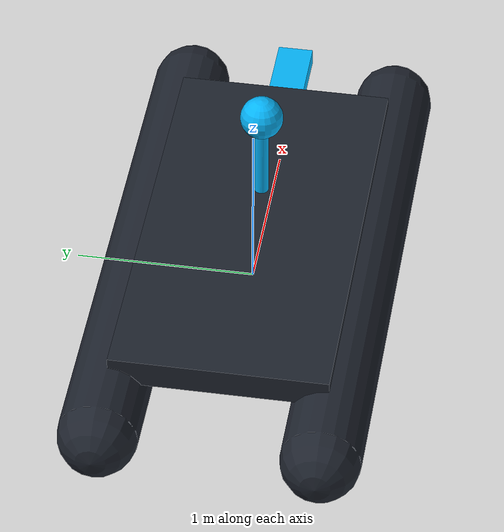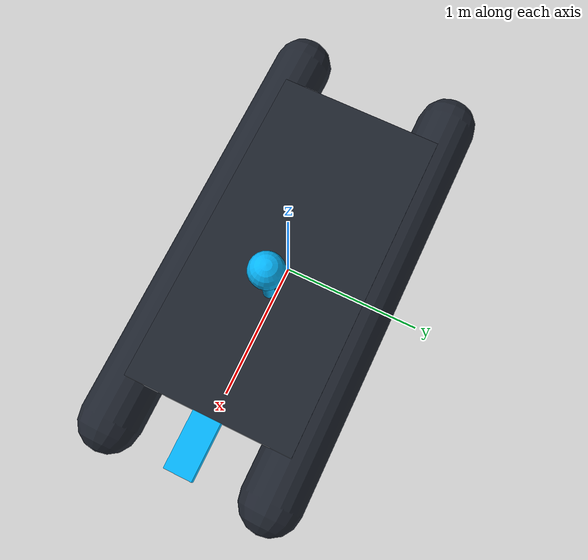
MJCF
<mujoco model="autonomous_usv_catamaran">
  <compiler angle="radian" coordinate="local" meshdir="assets"/>
  <option integrator="Euler" timestep="0.01" gravity="0 0 -9.81" viscosity="0.12" density="1025.0"/>

  <visual>
    <headlight ambient="0.4 0.4 0.4" diffuse="0.8 0.8 0.8" specular="0.2 0.2 0.2"/>
    <rgba fog="0.1 0.15 0.2 1"/>
  </visual>

  <asset>
    <texture type="skybox" builtin="gradient" rgb1="0.1 0.2 0.35" rgb2="0.05 0.1 0.2" width="512" height="512"/>
    <texture name="water_tex" type="2d" builtin="flat" rgb1="0.08 0.2 0.32" rgb2="0.04 0.1 0.22" width="256" height="256"/>
    <material name="water_mat" texture="water_tex" reflectance="0.3" shininess="0.5"/>
    <material name="hull_mat" rgba="0.12 0.14 0.18 1.0" shininess="0.4"/>
    <material name="accent_mat" rgba="0.02 0.71 0.98 1.0" shininess="0.8"/>
  </asset>

  <worldbody>
    <!-- Ground plane / seabed -->
    <geom name="ocean_floor" type="plane" size="500 500 1" pos="0 0 -20" rgba="0.05 0.08 0.12 1"/>

    <!-- Water surface representation -->
    <geom name="water_surface" type="plane" size="500 500 0.1" pos="0 0 0" material="water_mat" conaffinity="0" contype="0"/>

    <!-- Autonomous USV Catamaran Entity -->
    <body name="usv_hull" pos="0 0 0.1">
      <freejoint name="root"/>

      <!-- Port Pontoon -->
      <geom name="pontoon_port" type="capsule" fromto="-1.5 0.6 0 1.5 0.6 0" size="0.22" material="hull_mat" mass="70"/>
      <!-- Starboard Pontoon -->
      <geom name="pontoon_stbd" type="capsule" fromto="-1.5 -0.6 0 1.5 -0.6 0" size="0.22" material="hull_mat" mass="70"/>

      <!-- Crossdeck Platform -->
      <geom name="deck" type="box" size="1.2 0.6 0.08" pos="0 0 0.2" material="hull_mat" mass="35"/>

      <!-- Masthead Tower (Camera & Sensor Mount) -->
      <geom name="mast" type="cylinder" size="0.04 0.3" pos="0.3 0 0.5" material="accent_mat" mass="5"/>
      <geom name="sensor_pod" type="sphere" size="0.12" pos="0.3 0 0.8" material="accent_mat" mass="3"/>

      <!-- Front Bow Marker (Cyan Indicator) -->
      <geom name="bow_glyph" type="box" size="0.2 0.1 0.05" pos="1.4 0 0.2" material="accent_mat" mass="1"/>

      <!-- Masthead Camera Sensor -->
      <camera name="masthead_cam" pos="0.35 0 0.8" euler="1.57 0 1.57" fovy="65"/>

      <!-- Actuator sites for differential thrusters -->
      <site name="thruster_port_site" pos="-1.5 0.6 -0.1" size="0.05"/>
      <site name="thruster_stbd_site" pos="-1.5 -0.6 -0.1" size="0.05"/>
    </body>
  </worldbody>

  <actuator>
    <!-- Differential Twin Electric Thrusters -->
    <motor name="thruster_port" site="thruster_port_site" gear="1 0 0 0 0 0" ctrlrange="-150 250"/>
    <motor name="thruster_stbd" site="thruster_stbd_site" gear="1 0 0 0 0 0" ctrlrange="-150 250"/>
  </actuator>
</mujoco>
